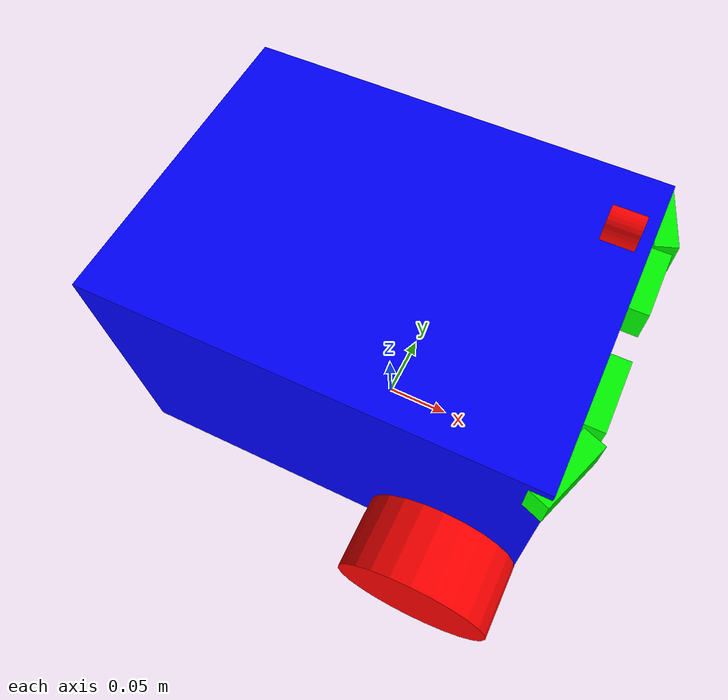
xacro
<?xml version="1.0"?>
<robot xmlns:xacro="http://www.ros.org/wiki/xacro" name="robomagellan">

	<xacro:property name="centerToAxle" value="0.2" />

    <material name="blue">
        <color rgba="0 0 1 1"/>
    </material>
    <material name="red">
        <color rgba="1 0 0 1"/>
    </material>
    <material name="green">
        <color rgba="0 1 0 1"/>
    </material>
    <material name="yellow">
        <color rgba="0 0.5 0.5 1"/>
    </material>

	<link name="base_footprint"/>

	<joint name="base_footprint_to_base_link" type="fixed">
		<parent link="base_footprint"/>
		<child link="base_link"/>

		<origin xyz="0.093 0.0 0.055" />
	</joint>

	<link name="base_link">
		<visual>
			<origin xyz="-0.093 0.0 0.072" rpy="0 0 0" />
			<geometry>
				<box size="0.295 0.22 0.184" />
			</geometry>
			<material name="blue"/>
		</visual>
	</link>

	<joint name="base_link_to_left_wheel" type="fixed">
		<parent link="base_link"/>
		<child link="left_wheel"/>

		<origin xyz="0.0 0.135 0.0" />
	</joint>

	<link name="left_wheel">
		<visual>
			<origin xyz="0.0 0.0 0.0" rpy="1.570 0 0" />
			<geometry>
				<cylinder radius="0.055" length="0.053" />
			</geometry>
			<material name="red"/>
		</visual>
	</link>

	<joint name="base_link_to_right_wheel" type="fixed">
		<parent link="base_link"/>
		<child link="right_wheel"/>

		<origin xyz="0.0 -0.135 0.0" />
	</joint>

	<link name="right_wheel">
		<visual>
			<origin xyz="0.0 0.0 0.0" rpy="-1.570 0 0" />
			<geometry>
				<cylinder radius="0.055" length="0.053" />
			</geometry>
			<material name="red"/>
		</visual>
	</link>

	<joint name="base_link_to_camera_lens" type="fixed">
		<parent link="base_link"/>
		<child link="camera_lens"/>

		<origin xyz="0.035 0.035 0.199" />
	</joint>

	<link name="camera_lens">
	</link>

	<joint name="camera_lens_to_camera_lens_optical" type="fixed">
		<parent link="camera_lens"/>
		<child link="camera_lens_optical"/>

		<origin xyz="0 0 0" rpy="0.0 1.57 0.0" />
	</joint>

	<link name="camera_lens_optical">
		<visual>
			<geometry>
				<cylinder radius="0.01" length="0.02" />
			</geometry>
			<material name="red"/>
		</visual>
	</link>

    <joint name="base_link_to_infrared_1" type="fixed">
        <parent link="base_link"/>
        <child link="infrared_1"/>

        <origin xyz="0.040 0.0 0.0"/>
    </joint>

	<link name="infrared_1">
		<visual>
			<geometry>
				<box size="0.01 0.032 0.013" />
			</geometry>
			<material name="yellow"/>
		</visual>
	</link>

    <joint name="base_link_to_ultrasonic_1" type="fixed">
        <parent link="base_link"/>
        <child link="ultrasonic_1"/>

        <origin xyz="0.060 -0.040 0.145" rpy="0.0 0.0 0.0"/>
    </joint>

	<link name="ultrasonic_1">
		<visual>
			<geometry>
				<box size="0.015 0.047 0.025" />
			</geometry>
			<material name="green"/>
		</visual>
	</link>

    <joint name="base_link_to_ultrasonic_2" type="fixed">
        <parent link="base_link"/>
        <child link="ultrasonic_2"/>

        <origin xyz="0.060 0.040 0.145" rpy="0.0 0.0 0.0"/>
    </joint>

	<link name="ultrasonic_2">
		<visual>
			<geometry>
				<box size="0.015 0.047 0.025" />
			</geometry>
			<material name="green"/>
		</visual>
	</link>

    <joint name="base_link_to_ultrasonic_3" type="fixed">
        <parent link="base_link"/>
        <child link="ultrasonic_3"/>

        <origin xyz="0.055 -0.090 0.145" rpy="0.0 0.0 -0.349"/>
    </joint>

	<link name="ultrasonic_3">
		<visual>
			<geometry>
				<box size="0.015 0.047 0.025" />
			</geometry>
			<material name="green"/>
		</visual>
	</link>

    <joint name="base_link_to_ultrasonic_4" type="fixed">
        <parent link="base_link"/>
        <child link="ultrasonic_4"/>

        <origin xyz="0.055 0.090 0.145" rpy="0.0 0.0 0.349"/>
    </joint>

	<link name="ultrasonic_4">
		<visual>
			<geometry>
				<box size="0.015 0.047 0.025" />
			</geometry>
			<material name="green"/>
		</visual>
	</link>
</robot>
